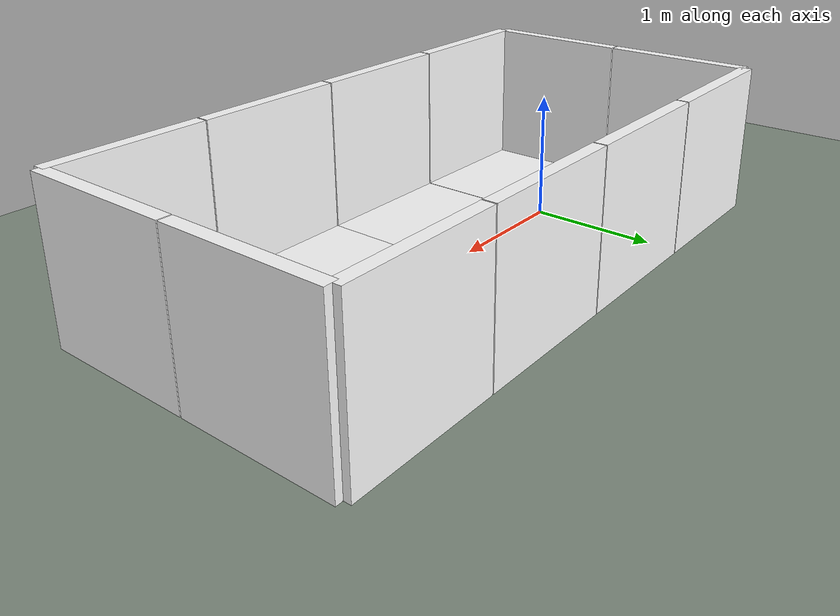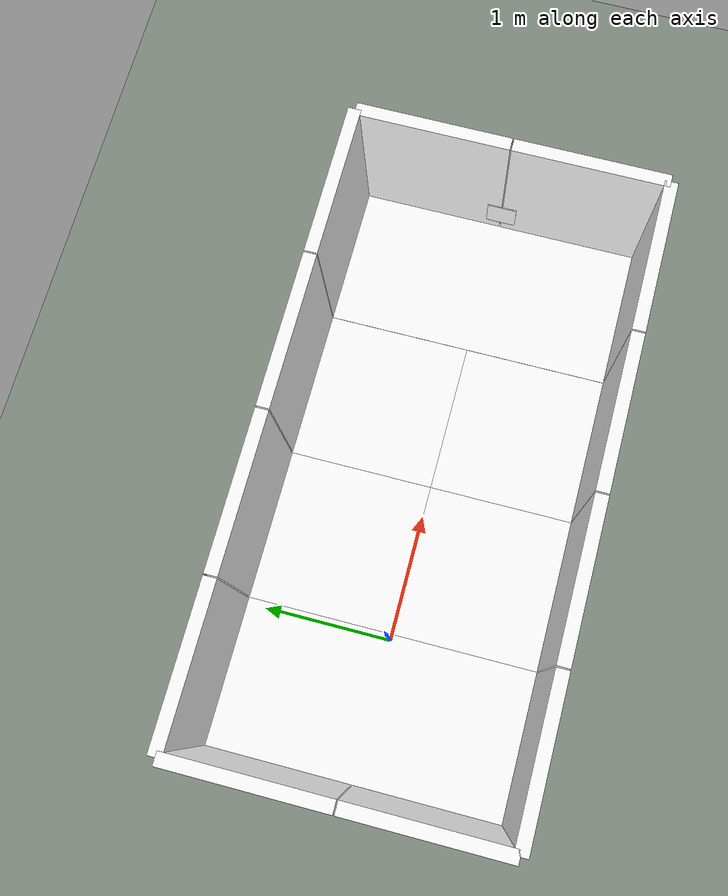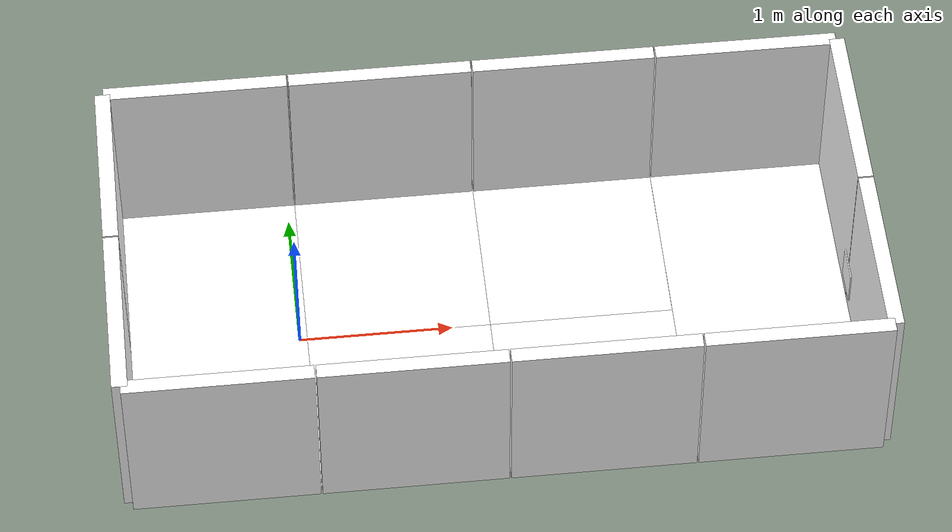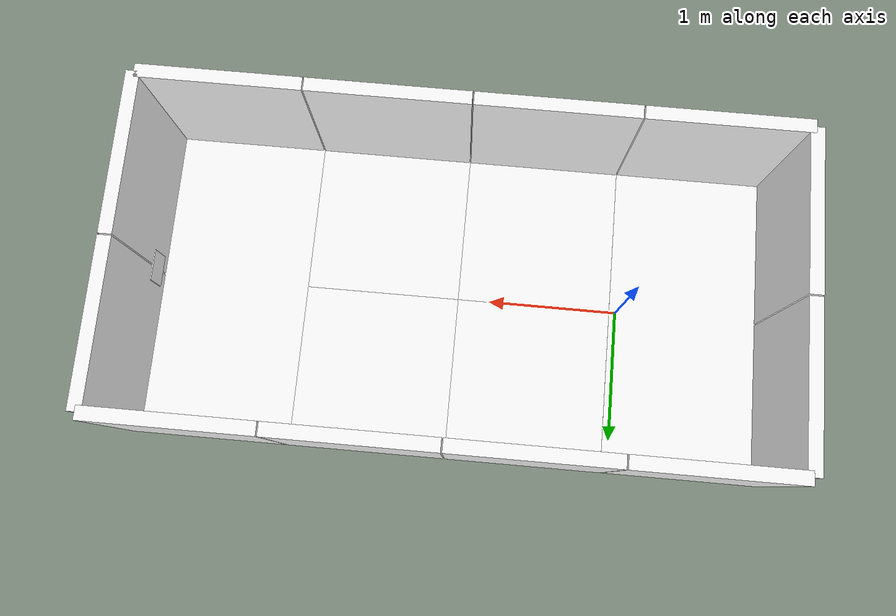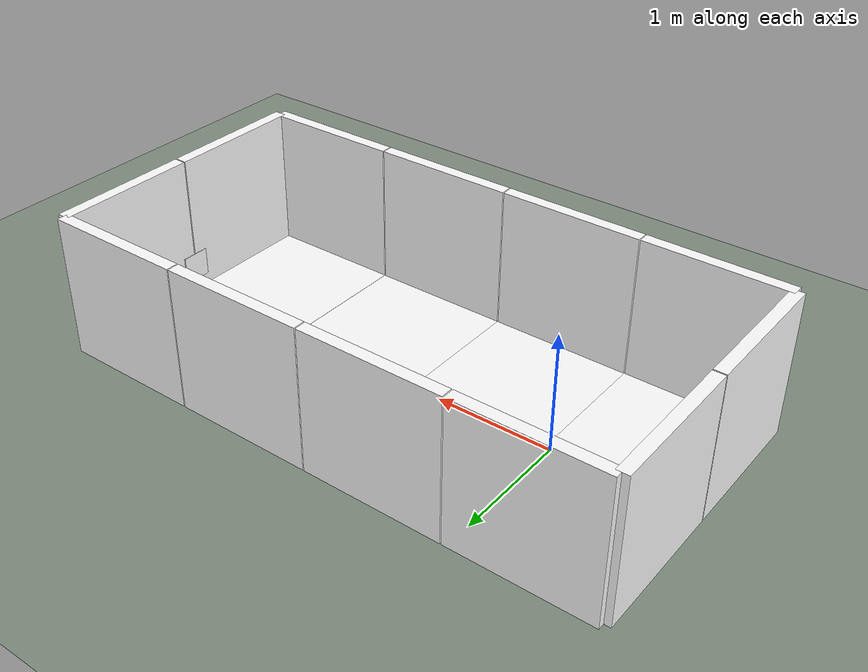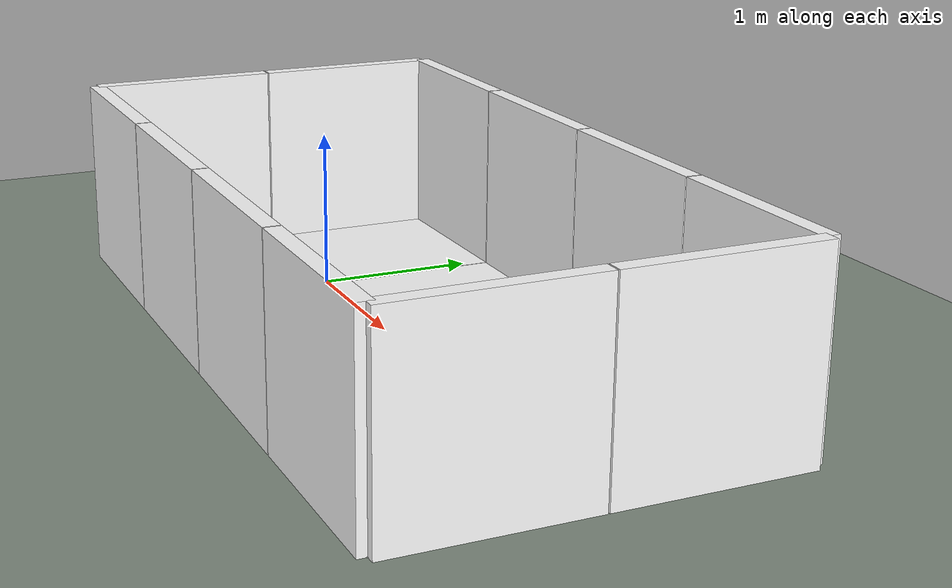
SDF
<?xml version="1.0"?>
<!-- Generated by generate_lane.py; edit the script, not this file. -->
<sdf version="1.9">
  <world name="lane">
    <physics name="1ms" type="ignored">
      <max_step_size>0.01</max_step_size>
      <real_time_factor>1.0</real_time_factor>
    </physics>
    <plugin filename="gz-sim-physics-system" name="gz::sim::systems::Physics"/>
    <plugin filename="gz-sim-user-commands-system" name="gz::sim::systems::UserCommands"/>
    <plugin filename="gz-sim-scene-broadcaster-system" name="gz::sim::systems::SceneBroadcaster"/>
    <plugin filename="gz-sim-sensors-system" name="gz::sim::systems::Sensors">
      <render_engine>ogre2</render_engine>
    </plugin>
    <plugin filename="gz-sim-imu-system" name="gz::sim::systems::Imu"/>
    <plugin filename="gz-sim-contact-system" name="gz::sim::systems::Contact"/>
    <scene>
      <ambient>0.55 0.55 0.55 1</ambient>
      <background>0.7 0.82 0.95 1</background>
      <shadows>true</shadows>
    </scene>
    <light type="directional" name="sun">
      <cast_shadows>true</cast_shadows>
      <pose>4 0 10 0 0 0</pose>
      <diffuse>0.85 0.85 0.8 1</diffuse>
      <specular>0.2 0.2 0.2 1</specular>
      <direction>-0.4 0.2 -0.9</direction>
    </light>
    <model name="ground_plane">
      <static>true</static>
      <link name="link">
        <collision name="collision">
          <geometry><plane><normal>0 0 1</normal><size>40 40</size></plane></geometry>
        </collision>
        <visual name="visual">
          <geometry><plane><normal>0 0 1</normal><size>40 40</size></plane></geometry>
          <material><ambient>0.5 0.55 0.5 1</ambient><diffuse>0.5 0.55 0.5 1</diffuse></material>
        </visual>
      </link>
    </model>

    <model name="lane_floor"><static>true</static><pose>0 0 0 0 0 0</pose><link name="link"><visual name="tile_0_0"><pose>-0.55 -0.60 0.001 0 0 0</pose><geometry><box><size>1.2 1.2 0.002</size></box></geometry><material><diffuse>1 1 1 1</diffuse><specular>0.1 0.1 0.1 1</specular><pbr><metal><albedo_map>textures/osb_floor.jpg</albedo_map><roughness>0.9</roughness><metalness>0</metalness></metal></pbr></material></visual><visual name="tile_0_1"><pose>-0.55 0.60 0.001 0 0 0</pose><geometry><box><size>1.2 1.2 0.002</size></box></geometry><material><diffuse>1 1 1 1</diffuse><specular>0.1 0.1 0.1 1</specular><pbr><metal><albedo_map>textures/osb_floor.jpg</albedo_map><roughness>0.9</roughness><metalness>0</metalness></metal></pbr></material></visual><visual name="tile_1_0"><pose>0.65 -0.60 0.001 0 0 0</pose><geometry><box><size>1.2 1.2 0.002</size></box></geometry><material><diffuse>1 1 1 1</diffuse><specular>0.1 0.1 0.1 1</specular><pbr><metal><albedo_map>textures/osb_floor.jpg</albedo_map><roughness>0.9</roughness><metalness>0</metalness></metal></pbr></material></visual><visual name="tile_1_1"><pose>0.65 0.60 0.001 0 0 0</pose><geometry><box><size>1.2 1.2 0.002</size></box></geometry><material><diffuse>1 1 1 1</diffuse><specular>0.1 0.1 0.1 1</specular><pbr><metal><albedo_map>textures/osb_floor.jpg</albedo_map><roughness>0.9</roughness><metalness>0</metalness></metal></pbr></material></visual><visual name="tile_2_0"><pose>1.85 -0.60 0.001 0 0 0</pose><geometry><box><size>1.2 1.2 0.002</size></box></geometry><material><diffuse>1 1 1 1</diffuse><specular>0.1 0.1 0.1 1</specular><pbr><metal><albedo_map>textures/osb_floor.jpg</albedo_map><roughness>0.9</roughness><metalness>0</metalness></metal></pbr></material></visual><visual name="tile_2_1"><pose>1.85 0.60 0.001 0 0 0</pose><geometry><box><size>1.2 1.2 0.002</size></box></geometry><material><diffuse>1 1 1 1</diffuse><specular>0.1 0.1 0.1 1</specular><pbr><metal><albedo_map>textures/osb_floor.jpg</albedo_map><roughness>0.9</roughness><metalness>0</metalness></metal></pbr></material></visual><visual name="tile_3_0"><pose>3.05 -0.60 0.001 0 0 0</pose><geometry><box><size>1.2 1.2 0.002</size></box></geometry><material><diffuse>1 1 1 1</diffuse><specular>0.1 0.1 0.1 1</specular><pbr><metal><albedo_map>textures/osb_floor.jpg</albedo_map><roughness>0.9</roughness><metalness>0</metalness></metal></pbr></material></visual><visual name="tile_3_1"><pose>3.05 0.60 0.001 0 0 0</pose><geometry><box><size>1.2 1.2 0.002</size></box></geometry><material><diffuse>1 1 1 1</diffuse><specular>0.1 0.1 0.1 1</specular><pbr><metal><albedo_map>textures/osb_floor.jpg</albedo_map><roughness>0.9</roughness><metalness>0</metalness></metal></pbr></material></visual><visual name="start_bay"><pose>-0.55 0 0.003 0 0 0</pose><geometry><box><size>1.2 2.4 0.002</size></box></geometry><material><diffuse>1 1 1 1</diffuse><specular>0.1 0.1 0.1 1</specular><pbr><metal><albedo_map>textures/start_bay.png</albedo_map><roughness>0.9</roughness><metalness>0</metalness></metal></pbr></material></visual><visual name="end_bay"><pose>3.05 0 0.003 0 0 0</pose><geometry><box><size>1.2 2.4 0.002</size></box></geometry><material><diffuse>1 1 1 1</diffuse><specular>0.1 0.1 0.1 1</specular><pbr><metal><albedo_map>textures/end_bay.png</albedo_map><roughness>0.9</roughness><metalness>0</metalness></metal></pbr></material></visual></link></model>
    <model name="end_qr"><static>true</static><pose>3.595 0 0.22 0 0 3.1416</pose><link name="link"><visual name="board"><pose>0 0 0 0 0 0</pose><geometry><box><size>0.008 0.24 0.24</size></box></geometry><material><diffuse>1 1 1 1</diffuse><specular>0.1 0.1 0.1 1</specular><pbr><metal><albedo_map>textures/qr_end.png</albedo_map><roughness>0.9</roughness><metalness>0</metalness></metal></pbr></material></visual></link></model>
    <model name="wall_0"><static>true</static><pose>1.250 -1.200 0.6 0 0 0.0000</pose><link name="link"><collision name="collision"><geometry><box><size>4.800 0.1 1.2</size></box></geometry></collision><visual name="panel_0"><pose>-1.800 0 0 0 0 0</pose><geometry><box><size>1.190 0.1 1.2</size></box></geometry><material><diffuse>1 1 1 1</diffuse><specular>0.1 0.1 0.1 1</specular><pbr><metal><albedo_map>textures/plywood.jpg</albedo_map><roughness>0.9</roughness><metalness>0</metalness></metal></pbr></material></visual><visual name="panel_1"><pose>-0.600 0 0 0 0 0</pose><geometry><box><size>1.190 0.1 1.2</size></box></geometry><material><diffuse>1 1 1 1</diffuse><specular>0.1 0.1 0.1 1</specular><pbr><metal><albedo_map>textures/plywood.jpg</albedo_map><roughness>0.9</roughness><metalness>0</metalness></metal></pbr></material></visual><visual name="panel_2"><pose>0.600 0 0 0 0 0</pose><geometry><box><size>1.190 0.1 1.2</size></box></geometry><material><diffuse>1 1 1 1</diffuse><specular>0.1 0.1 0.1 1</specular><pbr><metal><albedo_map>textures/plywood.jpg</albedo_map><roughness>0.9</roughness><metalness>0</metalness></metal></pbr></material></visual><visual name="panel_3"><pose>1.800 0 0 0 0 0</pose><geometry><box><size>1.190 0.1 1.2</size></box></geometry><material><diffuse>1 1 1 1</diffuse><specular>0.1 0.1 0.1 1</specular><pbr><metal><albedo_map>textures/plywood.jpg</albedo_map><roughness>0.9</roughness><metalness>0</metalness></metal></pbr></material></visual></link></model>
    <model name="wall_1"><static>true</static><pose>3.650 0.000 0.6 0 0 1.5708</pose><link name="link"><collision name="collision"><geometry><box><size>2.400 0.1 1.2</size></box></geometry></collision><visual name="panel_0"><pose>-0.600 0 0 0 0 0</pose><geometry><box><size>1.190 0.1 1.2</size></box></geometry><material><diffuse>1 1 1 1</diffuse><specular>0.1 0.1 0.1 1</specular><pbr><metal><albedo_map>textures/plywood.jpg</albedo_map><roughness>0.9</roughness><metalness>0</metalness></metal></pbr></material></visual><visual name="panel_1"><pose>0.600 0 0 0 0 0</pose><geometry><box><size>1.190 0.1 1.2</size></box></geometry><material><diffuse>1 1 1 1</diffuse><specular>0.1 0.1 0.1 1</specular><pbr><metal><albedo_map>textures/plywood.jpg</albedo_map><roughness>0.9</roughness><metalness>0</metalness></metal></pbr></material></visual></link></model>
    <model name="wall_2"><static>true</static><pose>1.250 1.200 0.6 0 0 3.1416</pose><link name="link"><collision name="collision"><geometry><box><size>4.800 0.1 1.2</size></box></geometry></collision><visual name="panel_0"><pose>-1.800 0 0 0 0 0</pose><geometry><box><size>1.190 0.1 1.2</size></box></geometry><material><diffuse>1 1 1 1</diffuse><specular>0.1 0.1 0.1 1</specular><pbr><metal><albedo_map>textures/plywood.jpg</albedo_map><roughness>0.9</roughness><metalness>0</metalness></metal></pbr></material></visual><visual name="panel_1"><pose>-0.600 0 0 0 0 0</pose><geometry><box><size>1.190 0.1 1.2</size></box></geometry><material><diffuse>1 1 1 1</diffuse><specular>0.1 0.1 0.1 1</specular><pbr><metal><albedo_map>textures/plywood.jpg</albedo_map><roughness>0.9</roughness><metalness>0</metalness></metal></pbr></material></visual><visual name="panel_2"><pose>0.600 0 0 0 0 0</pose><geometry><box><size>1.190 0.1 1.2</size></box></geometry><material><diffuse>1 1 1 1</diffuse><specular>0.1 0.1 0.1 1</specular><pbr><metal><albedo_map>textures/plywood.jpg</albedo_map><roughness>0.9</roughness><metalness>0</metalness></metal></pbr></material></visual><visual name="panel_3"><pose>1.800 0 0 0 0 0</pose><geometry><box><size>1.190 0.1 1.2</size></box></geometry><material><diffuse>1 1 1 1</diffuse><specular>0.1 0.1 0.1 1</specular><pbr><metal><albedo_map>textures/plywood.jpg</albedo_map><roughness>0.9</roughness><metalness>0</metalness></metal></pbr></material></visual></link></model>
    <model name="wall_3"><static>true</static><pose>-1.150 0.000 0.6 0 0 -1.5708</pose><link name="link"><collision name="collision"><geometry><box><size>2.400 0.1 1.2</size></box></geometry></collision><visual name="panel_0"><pose>-0.600 0 0 0 0 0</pose><geometry><box><size>1.190 0.1 1.2</size></box></geometry><material><diffuse>1 1 1 1</diffuse><specular>0.1 0.1 0.1 1</specular><pbr><metal><albedo_map>textures/plywood.jpg</albedo_map><roughness>0.9</roughness><metalness>0</metalness></metal></pbr></material></visual><visual name="panel_1"><pose>0.600 0 0 0 0 0</pose><geometry><box><size>1.190 0.1 1.2</size></box></geometry><material><diffuse>1 1 1 1</diffuse><specular>0.1 0.1 0.1 1</specular><pbr><metal><albedo_map>textures/plywood.jpg</albedo_map><roughness>0.9</roughness><metalness>0</metalness></metal></pbr></material></visual></link></model>
    <model name="overview_camera"><static>true</static><pose>1.25 0 4.2 0 1.5708 1.5708</pose><link name="link"><sensor name="overview" type="camera"><update_rate>2</update_rate><topic>overview/image</topic><camera><horizontal_fov>1.25</horizontal_fov><image><width>960</width><height>640</height></image><clip><near>0.5</near><far>30</far></clip></camera></sensor></link></model>
  </world>
</sdf>
